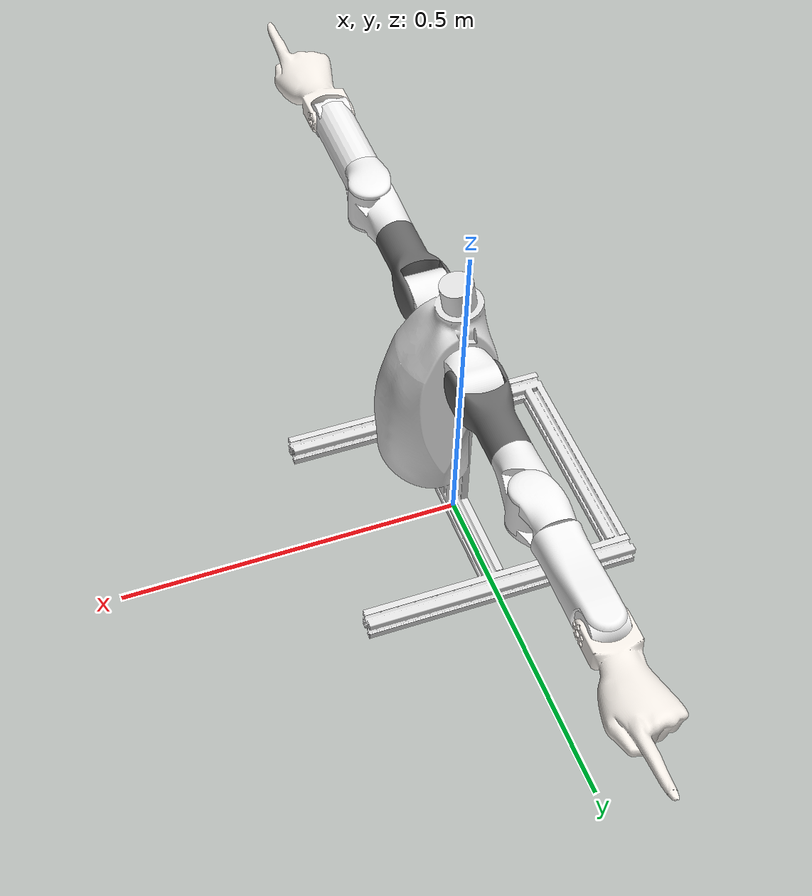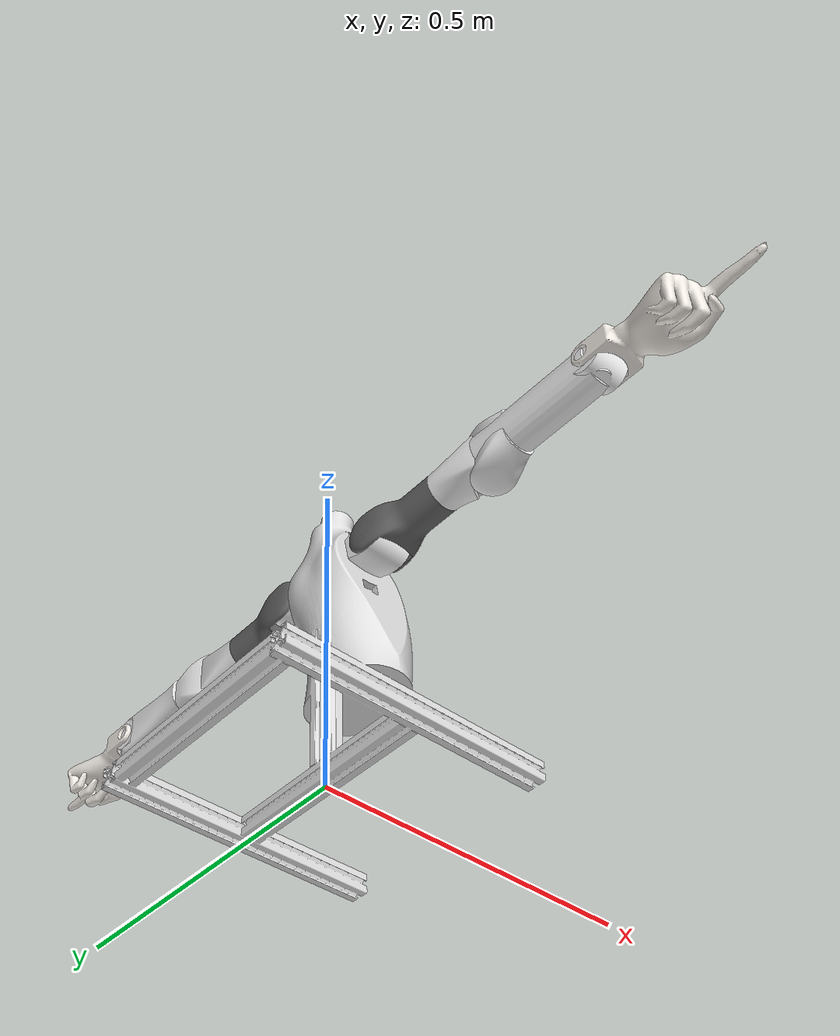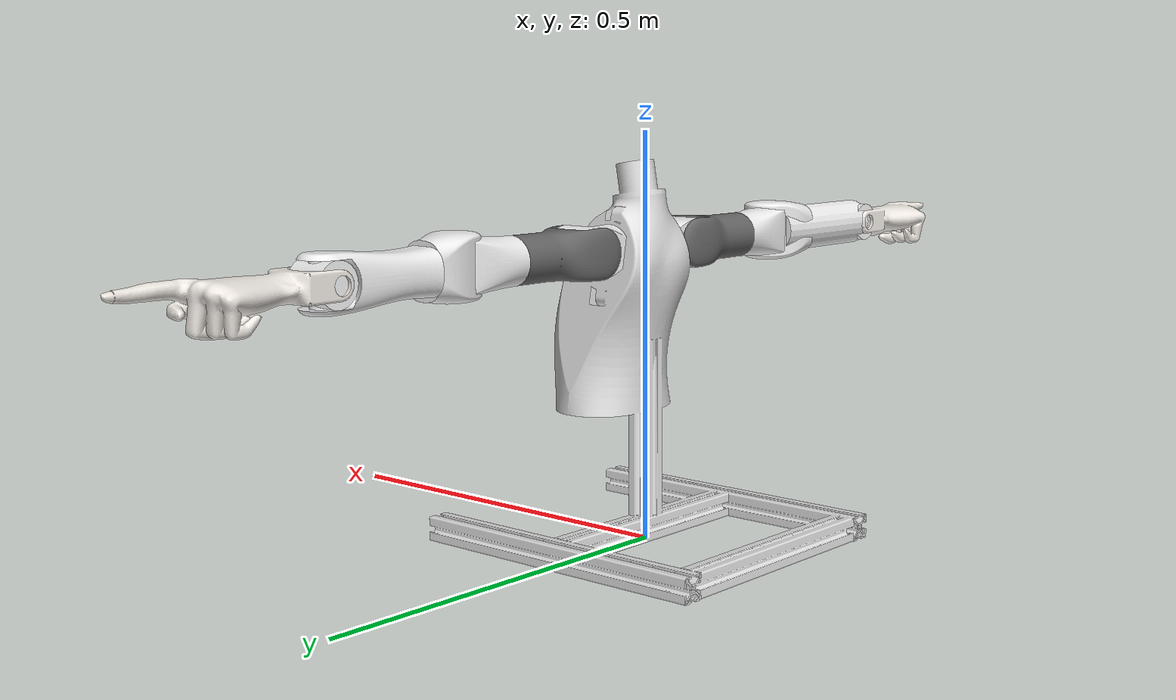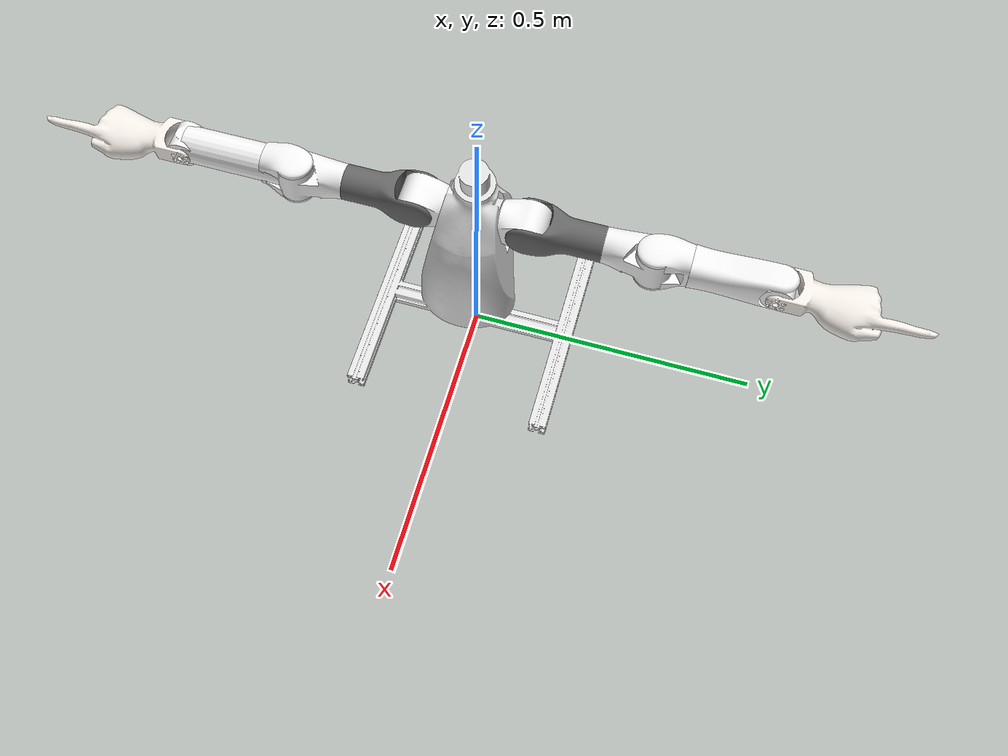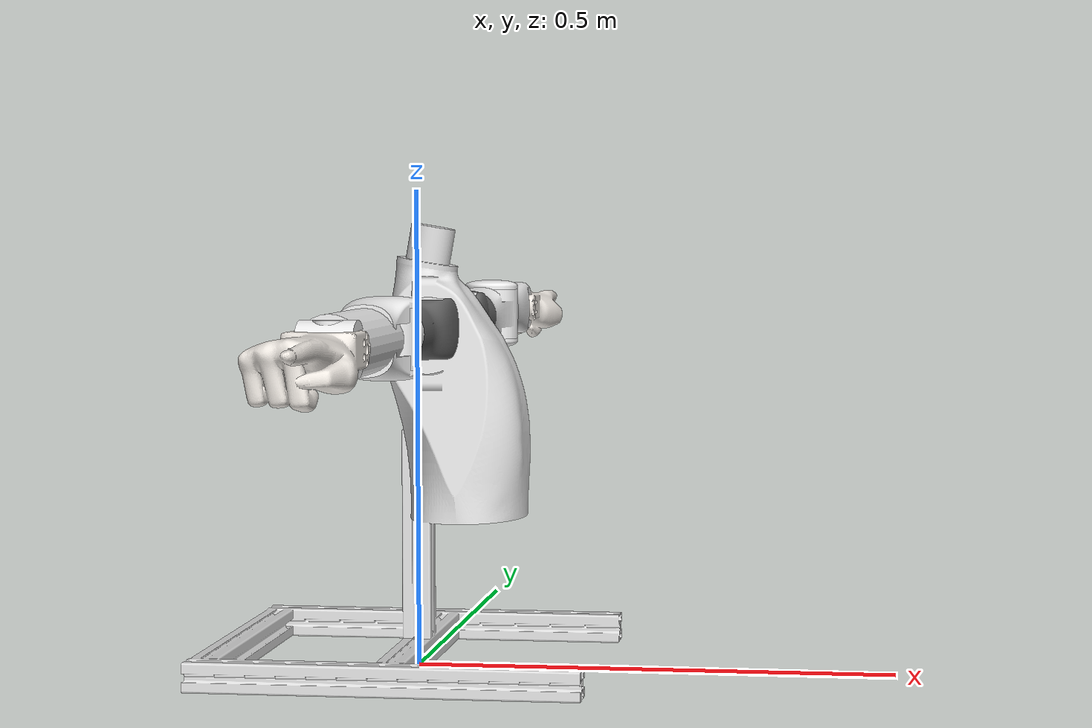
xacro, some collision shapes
<?xml version="1.0"?>
<!-- GENERATED by lite_description.workflow from Onshape CAD. Do not edit by hand. Regenerate: lite-description-generate lite_bimanual -->
<robot xmlns:xacro="http://www.ros.org/wiki/xacro" name="lite_bimanual">
  <xacro:arg name="use_mock_hardware" default="true"/>
  <xacro:arg name="sim_mujoco" default="false"/>
  <xacro:arg name="can_interface_left" default="can0"/>
  <xacro:arg name="can_interface_right" default="can1"/>
  <xacro:arg name="calibration_file" default=""/>

  <xacro:include filename="$(find lite_description)/robots/lite_bimanual/xacro/lite_bimanual.description.xacro"/>
  <xacro:include filename="$(find lite_description)/robots/lite_bimanual/xacro/lite_bimanual.ros2_control.xacro"/>

  <xacro:lite_bimanual_description/>

  <xacro:lite_bimanual_ros2_control
    use_mock_hardware="$(arg use_mock_hardware)"
    sim_mujoco="$(arg sim_mujoco)"
    can_interface_left="$(arg can_interface_left)"
    can_interface_right="$(arg can_interface_right)"
    calibration_file="$(arg calibration_file)"/>
</robot>

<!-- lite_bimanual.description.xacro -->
<!-- GENERATED by lite_description.workflow from Onshape CAD. Do not edit by hand. Regenerate: lite-description-generate lite_bimanual -->
<robot xmlns:xacro="http://www.ros.org/wiki/xacro">
  <xacro:macro name="lite_bimanual_description" params="mesh_root:=package://lite_description/robots/lite_bimanual/meshes/visual">
    <link name="base_link" />
    <joint name="base_link_to_chest" type="fixed">
      <parent link="base_link" />
      <child link="chest" />
      <origin xyz="0 0 0" rpy="0 0 0" />
    </joint>
    <!-- GENERATED by lite_description.workflow from Onshape CAD. Do not edit by hand. Regenerate: lite-description-generate lite_bimanual -->
    <link name="chest">
      <inertial>
        <origin xyz="0.0223994 -6.1147e-08 0.218844" rpy="0 0 0" />
        <mass value="5.67528" />
        <inertia ixx="0.11598" ixy="1.60807e-07" ixz="-0.0169372" iyy="0.116403" iyz="6.26784e-07" izz="0.0554604" />
      </inertial>
      <!-- Part chest_parts -->
      <collision>
        <origin xyz="0.055 0 0.18" rpy="0.226893 0 -1.5708" />
        <geometry>
          <cylinder length="0.16" radius="0.053" />
        </geometry>
      </collision>
      <collision>
        <origin xyz="0.045 -0.04 0.22" rpy="0.226893 -0.174533 -1.5708" />
        <geometry>
          <box size="0.04 0.08 0.18" />
        </geometry>
      </collision>
      <collision>
        <origin xyz="0.045 0.04 0.22" rpy="0.226893 0.174533 -1.5708" />
        <geometry>
          <box size="0.04 0.08 0.18" />
        </geometry>
      </collision>
      <visual>
        <origin xyz="0.0223994 -6.1147e-08 0.218844" rpy="0 -0 0" />
        <geometry>
          <mesh filename="${mesh_root}/chest_visual.stl" />
        </geometry>
        <material name="chest_parts_material">
          <color rgba="0.877556 0.877556 0.877556 1" />
        </material>
      </visual>
    </link>
    <!-- Link left_shoulder_pitch -->
    <link name="left_shoulder_pitch">
      <inertial>
        <origin xyz="-6.27e-10 -0.00168619 -0.00682299" rpy="0 0 0" />
        <mass value="0.375" />
        <inertia ixx="0.000232695" ixy="7e-12" ixz="2e-12" iyy="0.000233203" iyz="-1.40823e-05" izz="0.000199827" />
      </inertial>
      <!-- Part left_shoulder_pitch_parts -->
      <visual>
        <origin xyz="-6.27e-10 -0.00168619 -0.00682299" rpy="1.39626 0 -0" />
        <geometry>
          <mesh filename="${mesh_root}/left_shoulder_pitch_visual.stl" />
        </geometry>
        <material name="left_shoulder_pitch_parts_material">
          <color rgba="0.933333 0.933333 0.933333 1" />
        </material>
      </visual>
    </link>
    <!-- Link left_shoulder_roll -->
    <link name="left_shoulder_roll">
      <inertial>
        <origin xyz="1.04497e-07 0.0788914 2.17586e-07" rpy="0 0 0" />
        <mass value="0.42" />
        <inertia ixx="0.000535467" ixy="-2.373e-09" ixz="5.049e-09" iyy="0.000208176" iyz="7.18e-09" izz="0.00050471" />
      </inertial>
      <!-- Part left_shoulder_roll_parts -->
      <visual>
        <origin xyz="1.04497e-07 0.0788914 2.17586e-07" rpy="0 -1.5708 0" />
        <geometry>
          <mesh filename="${mesh_root}/left_shoulder_roll_visual.stl" />
        </geometry>
        <material name="left_shoulder_roll_parts_material">
          <color rgba="0.392063 0.392063 0.392063 1" />
        </material>
      </visual>
    </link>
    <!-- Link left_shoulder_yaw -->
    <link name="left_shoulder_yaw">
      <inertial>
        <origin xyz="0.00503665 -3.0465e-08 -0.0550993" rpy="0 0 0" />
        <mass value="0.43" />
        <inertia ixx="0.000494513" ixy="-1.96e-10" ixz="4.80344e-05" iyy="0.000498656" iyz="9.95e-10" izz="0.000218184" />
      </inertial>
      <!-- Part left_shoulder_yaw_parts -->
      <collision>
        <origin xyz="0 0 0.06" rpy="3.14159 -0 1.5708" />
        <geometry>
          <cylinder length="0.12" radius="0.035" />
        </geometry>
      </collision>
      <visual>
        <origin xyz="0.00503665 -3.0465e-08 -0.0550993" rpy="-1.5708 -0 0" />
        <geometry>
          <mesh filename="${mesh_root}/left_shoulder_yaw_visual.stl" />
        </geometry>
        <material name="left_shoulder_yaw_parts_material">
          <color rgba="0.933333 0.933333 0.933333 1" />
        </material>
      </visual>
    </link>
    <!-- Link left_elbow_pitch -->
    <link name="left_elbow_pitch">
      <inertial>
        <origin xyz="-0.00956573 0.0258355 -2.70123e-07" rpy="0 0 0" />
        <mass value="0.11" />
        <inertia ixx="0.000116342" ixy="7.43616e-06" ixz="-4.1438e-08" iyy="9.70555e-05" iyz="-5.662e-09" izz="7.93924e-05" />
      </inertial>
      <!-- Part left_elbow_pitch_parts -->
      <visual>
        <origin xyz="-0.00956573 0.0258355 -2.70123e-07" rpy="0 -0 -0" />
        <geometry>
          <mesh filename="${mesh_root}/left_elbow_pitch_visual.stl" />
        </geometry>
        <material name="left_elbow_pitch_parts_material">
          <color rgba="0.933333 0.933333 0.933333 1" />
        </material>
      </visual>
    </link>
    <!-- Link left_wrist_yaw -->
    <link name="left_wrist_yaw">
      <inertial>
        <origin xyz="1.26198e-07 -2.64771e-05 -0.0592502" rpy="0 0 0" />
        <mass value="0.54" />
        <inertia ixx="0.000850281" ixy="-2.7403e-08" ixz="-4.21e-09" iyy="0.000856128" iyz="-4.1398e-08" izz="0.000282296" />
      </inertial>
      <!-- Part left_wrist_yaw_parts -->
      <collision>
        <origin xyz="-0 -0 -0.04" rpy="0 0 0" />
        <geometry>
          <cylinder length="0.19" radius="0.03" />
        </geometry>
      </collision>
      <visual>
        <origin xyz="1.26198e-07 -2.64771e-05 -0.0592502" rpy="-1.5708 -0 -0" />
        <geometry>
          <mesh filename="${mesh_root}/left_wrist_yaw_visual.stl" />
        </geometry>
        <material name="left_wrist_yaw_parts_material">
          <color rgba="0.933333 0.933333 0.933333 1" />
        </material>
      </visual>
    </link>
    <!-- Link left_wrist_roll -->
    <link name="left_wrist_roll">
      <inertial>
        <origin xyz="3.48e-10 1e-12 -2.12e-10" rpy="0 0 0" />
        <mass value="0.25" />
        <inertia ixx="7.92687e-05" ixy="0" ixz="0" iyy="9.19125e-05" iyz="-6.7e-11" izz="9.04076e-05" />
      </inertial>
      <!-- Part left_wrist_roll_parts -->
      <visual>
        <origin xyz="3.48e-10 1e-12 -2.12e-10" rpy="0 0 -0" />
        <geometry>
          <mesh filename="${mesh_root}/left_wrist_roll_visual.stl" />
        </geometry>
        <material name="left_wrist_roll_parts_material">
          <color rgba="0.933333 0.933333 0.933333 1" />
        </material>
      </visual>
    </link>
    <!-- Link left_hand -->
    <link name="left_hand">
      <inertial>
        <origin xyz="0.0044138 0.1008 0.00606018" rpy="0 0 0" />
        <mass value="0.167493" />
        <inertia ixx="0.000456305" ixy="-6.09198e-07" ixz="-6.11506e-07" iyy="9.83135e-05" iyz="-4.35308e-05" izz="0.000407599" />
      </inertial>
      <!-- Part left_hand_parts -->
      <collision>
        <origin xyz="-0.007 0.194 0.0225" rpy="1.5708 1.5708 0" />
        <geometry>
          <cylinder length="0.06" radius="0.006" />
        </geometry>
      </collision>
      <collision>
        <origin xyz="0.01 0.1 0.0005" rpy="1.5708 1.5708 0" />
        <geometry>
          <cylinder length="0.04" radius="0.035" />
        </geometry>
      </collision>
      <visual>
        <origin xyz="0.0044138 0.1008 0.00606018" rpy="-0 -1.5708 0" />
        <geometry>
          <mesh filename="${mesh_root}/left_hand_visual.stl" />
        </geometry>
        <material name="left_hand_parts_material">
          <color rgba="0.935303 0.913041 0.886642 1" />
        </material>
      </visual>
    </link>
    <!-- Frame left_finger2_tip (dummy link + fixed joint) -->
    <link name="left_finger2_tip">
      <origin xyz="0 0 0" rpy="0 -0 0" />
      <inertial>
        <origin xyz="0 0 0" rpy="0 0 0" />
        <mass value="1e-9" />
        <inertia ixx="0" ixy="0" ixz="0" iyy="0" iyz="0" izz="0" />
      </inertial>
    </link>
    <joint name="left_finger2_tip_frame" type="fixed">
      <origin xyz="-0.007 0.225 0.0225" rpy="-1.5708 -0 1.5708" />
      <parent link="left_hand" />
      <child link="left_finger2_tip" />
      <axis xyz="0 0 0" />
    </joint>
    <!-- Joint from left_wrist_roll to left_hand -->
    <joint name="left_wrist_pitch" type="revolute">
      <origin xyz="0 -0 -0" rpy="0 1.5708 0" />
      <parent link="left_wrist_roll" />
      <child link="left_hand" />
      <axis xyz="0 0 1" />
      <limit effort="5.5" velocity="100" lower="-0.785398" upper="0.785398" />
      <joint_properties friction="0.1" />
    </joint>
    <!-- Joint from left_wrist_yaw to left_wrist_roll -->
    <joint name="left_wrist_roll" type="revolute">
      <origin xyz="0 0 -0.135" rpy="-1.5708 0 -0" />
      <parent link="left_wrist_yaw" />
      <child link="left_wrist_roll" />
      <axis xyz="0 0 1" />
      <limit effort="5.5" velocity="100" lower="-0.698132" upper="0.698132" />
      <joint_properties friction="0.1" />
    </joint>
    <!-- Joint from left_elbow_pitch to left_wrist_yaw -->
    <joint name="left_wrist_yaw" type="revolute">
      <origin xyz="-0.01 0.055 0" rpy="1.5708 -0 -0" />
      <parent link="left_elbow_pitch" />
      <child link="left_wrist_yaw" />
      <axis xyz="0 0 1" />
      <limit effort="5.5" velocity="100" lower="-2.0944" upper="1.5708" />
      <joint_properties friction="0.1" />
    </joint>
    <!-- Joint from left_shoulder_yaw to left_elbow_pitch -->
    <joint name="left_elbow_pitch" type="revolute">
      <origin xyz="0.01 -0 -0.08" rpy="-1.5708 0 0" />
      <parent link="left_shoulder_yaw" />
      <child link="left_elbow_pitch" />
      <axis xyz="0 0 1" />
      <limit effort="14" velocity="100" lower="-2.35619" upper="0" />
      <joint_properties friction="0.1" />
    </joint>
    <!-- Joint from left_shoulder_roll to left_shoulder_yaw -->
    <joint name="left_shoulder_yaw" type="revolute">
      <origin xyz="0 0.12 0" rpy="1.5708 -1.5708 0" />
      <parent link="left_shoulder_roll" />
      <child link="left_shoulder_yaw" />
      <axis xyz="0 0 1" />
      <limit effort="14" velocity="100" lower="-1.5708" upper="1.5708" />
      <joint_properties friction="0.1" />
    </joint>
    <!-- Joint from left_shoulder_pitch to left_shoulder_roll -->
    <joint name="left_shoulder_roll" type="revolute">
      <origin xyz="0 -0 0" rpy="1.5708 0.174533 1.5708" />
      <parent link="left_shoulder_pitch" />
      <child link="left_shoulder_roll" />
      <axis xyz="0 0 1" />
      <limit effort="14" velocity="100" lower="-1.5708" upper="1.91986" />
      <joint_properties friction="0.1" />
    </joint>
    <!-- Joint from chest to left_shoulder_pitch -->
    <joint name="left_shoulder_pitch" type="revolute">
      <origin xyz="0.02 0.09 0.36" rpy="-1.39626 0 0" />
      <parent link="chest" />
      <child link="left_shoulder_pitch" />
      <axis xyz="0 0 1" />
      <limit effort="17" velocity="100" lower="-3.14159" upper="0.785398" />
      <joint_properties friction="0.1" />
    </joint>
    <!-- Link right_shoulder_pitch -->
    <link name="right_shoulder_pitch">
      <inertial>
        <origin xyz="6.27e-10 -0.00168619 0.00682299" rpy="0 0 0" />
        <mass value="0.375" />
        <inertia ixx="0.000232695" ixy="-7e-12" ixz="2e-12" iyy="0.000233203" iyz="1.40823e-05" izz="0.000199827" />
      </inertial>
      <!-- Part right_shoulder_pitch_parts -->
      <visual>
        <origin xyz="6.27e-10 -0.00168619 0.00682299" rpy="1.74533 0 0" />
        <geometry>
          <mesh filename="${mesh_root}/right_shoulder_pitch_visual.stl" />
        </geometry>
        <material name="right_shoulder_pitch_parts_material">
          <color rgba="0.933333 0.933333 0.933333 1" />
        </material>
      </visual>
    </link>
    <!-- Link right_shoulder_roll -->
    <link name="right_shoulder_roll">
      <inertial>
        <origin xyz="-1.01172e-07 0.0788914 2.6114e-08" rpy="0 0 0" />
        <mass value="0.42" />
        <inertia ixx="0.000535466" ixy="2.667e-09" ixz="-3.953e-09" iyy="0.000208176" iyz="-1.3e-11" izz="0.00050471" />
      </inertial>
      <!-- Part right_shoulder_roll_parts -->
      <visual>
        <origin xyz="-1.01172e-07 0.0788914 2.6114e-08" rpy="-3.14159 -1.5708 0" />
        <geometry>
          <mesh filename="${mesh_root}/right_shoulder_roll_visual.stl" />
        </geometry>
        <material name="right_shoulder_roll_parts_material">
          <color rgba="0.392063 0.392063 0.392063 1" />
        </material>
      </visual>
    </link>
    <!-- Link right_shoulder_yaw -->
    <link name="right_shoulder_yaw">
      <inertial>
        <origin xyz="0.00503646 -5.8721e-08 -0.0550993" rpy="0 0 0" />
        <mass value="0.43" />
        <inertia ixx="0.000494516" ixy="1.11e-10" ixz="4.80353e-05" iyy="0.000498658" iyz="1.121e-09" izz="0.000218183" />
      </inertial>
      <!-- Part right_shoulder_yaw_parts -->
      <collision>
        <origin xyz="0 -0 0.06" rpy="3.14159 0 1.5708" />
        <geometry>
          <cylinder length="0.12" radius="0.035" />
        </geometry>
      </collision>
      <visual>
        <origin xyz="0.00503646 -5.8721e-08 -0.0550993" rpy="1.5708 0 0" />
        <geometry>
          <mesh filename="${mesh_root}/right_shoulder_yaw_visual.stl" />
        </geometry>
        <material name="right_shoulder_yaw_parts_material">
          <color rgba="0.933333 0.933333 0.933333 1" />
        </material>
      </visual>
    </link>
    <!-- Link right_elbow_pitch -->
    <link name="right_elbow_pitch">
      <inertial>
        <origin xyz="-0.0095654 0.0258358 1.46047e-06" rpy="0 0 0" />
        <mass value="0.11" />
        <inertia ixx="0.000116343" ixy="7.43678e-06" ixz="3.8036e-08" iyy="9.70569e-05" iyz="6.815e-09" izz="7.93932e-05" />
      </inertial>
      <!-- Part right_elbow_pitch_parts -->
      <visual>
        <origin xyz="-0.0095654 0.0258358 1.46047e-06" rpy="-3.14159 -0 0" />
        <geometry>
          <mesh filename="${mesh_root}/right_elbow_pitch_visual.stl" />
        </geometry>
        <material name="right_elbow_pitch_parts_material">
          <color rgba="0.933333 0.933333 0.933333 1" />
        </material>
      </visual>
    </link>
    <!-- Link right_wrist_yaw -->
    <link name="right_wrist_yaw">
      <inertial>
        <origin xyz="1.99324e-07 2.65767e-05 -0.0592501" rpy="0 0 0" />
        <mass value="0.54" />
        <inertia ixx="0.000850282" ixy="2.867e-08" ixz="-3.809e-09" iyy="0.000856128" iyz="4.2812e-08" izz="0.000282295" />
      </inertial>
      <!-- Part right_wrist_yaw_parts -->
      <collision>
        <origin xyz="-0 -0 -0.04" rpy="-0 0 3.14159" />
        <geometry>
          <cylinder length="0.19" radius="0.03" />
        </geometry>
      </collision>
      <visual>
        <origin xyz="1.99324e-07 2.65767e-05 -0.0592501" rpy="1.5708 0 0" />
        <geometry>
          <mesh filename="${mesh_root}/right_wrist_yaw_visual.stl" />
        </geometry>
        <material name="right_wrist_yaw_parts_material">
          <color rgba="0.933333 0.933333 0.933333 1" />
        </material>
      </visual>
    </link>
    <!-- Link right_wrist_roll -->
    <link name="right_wrist_roll">
      <inertial>
        <origin xyz="4.084e-09 -2e-12 -2.02e-10" rpy="0 0 0" />
        <mass value="0.25" />
        <inertia ixx="7.92688e-05" ixy="-0" ixz="0" iyy="9.19094e-05" iyz="2.493e-09" izz="9.04084e-05" />
      </inertial>
      <!-- Part right_wrist_roll_parts -->
      <visual>
        <origin xyz="4.084e-09 -2e-12 -2.02e-10" rpy="-3.14159 -0 0" />
        <geometry>
          <mesh filename="${mesh_root}/right_wrist_roll_visual.stl" />
        </geometry>
        <material name="right_wrist_roll_parts_material">
          <color rgba="0.933333 0.933333 0.933333 1" />
        </material>
      </visual>
    </link>
    <!-- Link right_hand -->
    <link name="right_hand">
      <inertial>
        <origin xyz="-0.00441379 0.100801 0.0060602" rpy="0 0 0" />
        <mass value="0.167493" />
        <inertia ixx="0.000456304" ixy="6.09364e-07" ixz="6.11187e-07" iyy="9.83137e-05" iyz="-4.35308e-05" izz="0.000407598" />
      </inertial>
      <!-- Part right_hand_parts -->
      <collision>
        <origin xyz="0.007 0.194 0.0225" rpy="1.5708 -1.5708 0" />
        <geometry>
          <cylinder length="0.06" radius="0.006" />
        </geometry>
      </collision>
      <collision>
        <origin xyz="-0.01 0.1 0.0005" rpy="1.5708 -1.5708 0" />
        <geometry>
          <cylinder length="0.04" radius="0.035" />
        </geometry>
      </collision>
      <visual>
        <origin xyz="-0.00441379 0.100801 0.0060602" rpy="3.14159 -1.5708 0" />
        <geometry>
          <mesh filename="${mesh_root}/right_hand_visual.stl" />
        </geometry>
        <material name="right_hand_parts_material">
          <color rgba="0.935303 0.913041 0.886642 1" />
        </material>
      </visual>
    </link>
    <!-- Frame right_finger2_tip (dummy link + fixed joint) -->
    <link name="right_finger2_tip">
      <origin xyz="0 0 0" rpy="0 -0 0" />
      <inertial>
        <origin xyz="0 0 0" rpy="0 0 0" />
        <mass value="1e-9" />
        <inertia ixx="0" ixy="0" ixz="0" iyy="0" iyz="0" izz="0" />
      </inertial>
    </link>
    <joint name="right_finger2_tip_frame" type="fixed">
      <origin xyz="0.007 0.225 0.0225" rpy="1.5708 0 1.5708" />
      <parent link="right_hand" />
      <child link="right_finger2_tip" />
      <axis xyz="0 0 0" />
    </joint>
    <!-- Joint from right_wrist_roll to right_hand -->
    <joint name="right_wrist_pitch" type="revolute">
      <origin xyz="0 -0 0" rpy="0 1.5708 0" />
      <parent link="right_wrist_roll" />
      <child link="right_hand" />
      <axis xyz="0 0 1" />
      <limit effort="5.5" velocity="100" lower="-0.785398" upper="0.785398" />
      <joint_properties friction="0.1" />
    </joint>
    <!-- Joint from right_wrist_yaw to right_wrist_roll -->
    <joint name="right_wrist_roll" type="revolute">
      <origin xyz="0 -0 -0.135" rpy="-1.5708 0 0" />
      <parent link="right_wrist_yaw" />
      <child link="right_wrist_roll" />
      <axis xyz="0 0 1" />
      <limit effort="5.5" velocity="100" lower="-0.698132" upper="0.698132" />
      <joint_properties friction="0.1" />
    </joint>
    <!-- Joint from right_elbow_pitch to right_wrist_yaw -->
    <joint name="right_wrist_yaw" type="revolute">
      <origin xyz="-0.01 0.055 0" rpy="1.5708 -0 -0" />
      <parent link="right_elbow_pitch" />
      <child link="right_wrist_yaw" />
      <axis xyz="0 0 1" />
      <limit effort="5.5" velocity="100" lower="-1.5708" upper="2.0944" />
      <joint_properties friction="0.1" />
    </joint>
    <!-- Joint from right_shoulder_yaw to right_elbow_pitch -->
    <joint name="right_elbow_pitch" type="revolute">
      <origin xyz="0.01 0 -0.08" rpy="-1.5708 -0 0" />
      <parent link="right_shoulder_yaw" />
      <child link="right_elbow_pitch" />
      <axis xyz="0 0 1" />
      <limit effort="14" velocity="100" lower="-2.35619" upper="0" />
      <joint_properties friction="0.1" />
    </joint>
    <!-- Joint from right_shoulder_roll to right_shoulder_yaw -->
    <joint name="right_shoulder_yaw" type="revolute">
      <origin xyz="-0 0.12 0" rpy="1.5708 -1.5708 0" />
      <parent link="right_shoulder_roll" />
      <child link="right_shoulder_yaw" />
      <axis xyz="0 0 1" />
      <limit effort="14" velocity="100" lower="-1.5708" upper="1.5708" />
      <joint_properties friction="0.1" />
    </joint>
    <!-- Joint from right_shoulder_pitch to right_shoulder_roll -->
    <joint name="right_shoulder_roll" type="revolute">
      <origin xyz="0 -0 0" rpy="-1.5708 0.174533 -1.5708" />
      <parent link="right_shoulder_pitch" />
      <child link="right_shoulder_roll" />
      <axis xyz="0 0 1" />
      <limit effort="14" velocity="100" lower="-1.91986" upper="1.5708" />
      <joint_properties friction="0.1" />
    </joint>
    <!-- Joint from chest to right_shoulder_pitch -->
    <joint name="right_shoulder_pitch" type="revolute">
      <origin xyz="0.02 -0.09 0.36" rpy="-1.74533 -0 0" />
      <parent link="chest" />
      <child link="right_shoulder_pitch" />
      <axis xyz="0 0 1" />
      <limit effort="17" velocity="100" lower="-3.14159" upper="0.785398" />
      <joint_properties friction="0.1" />
    </joint>
  </xacro:macro>
</robot>
